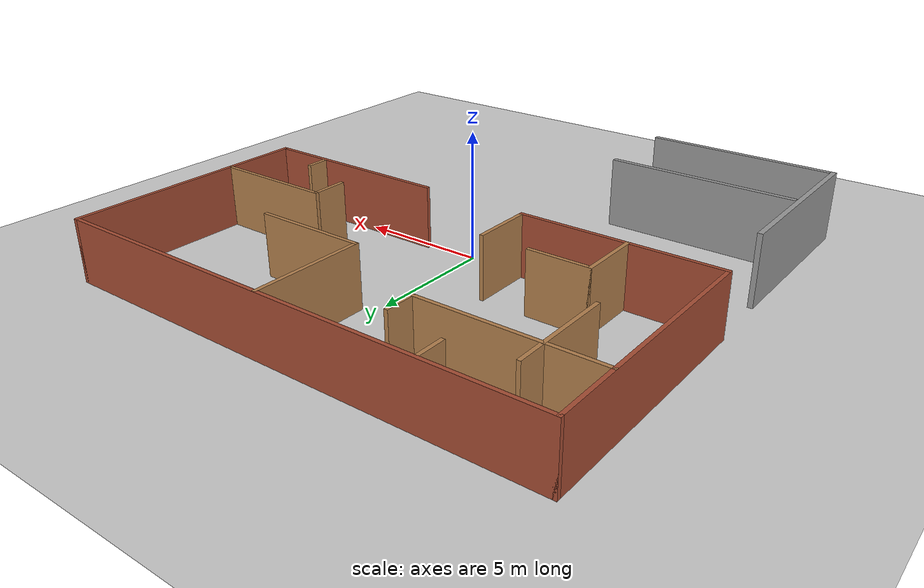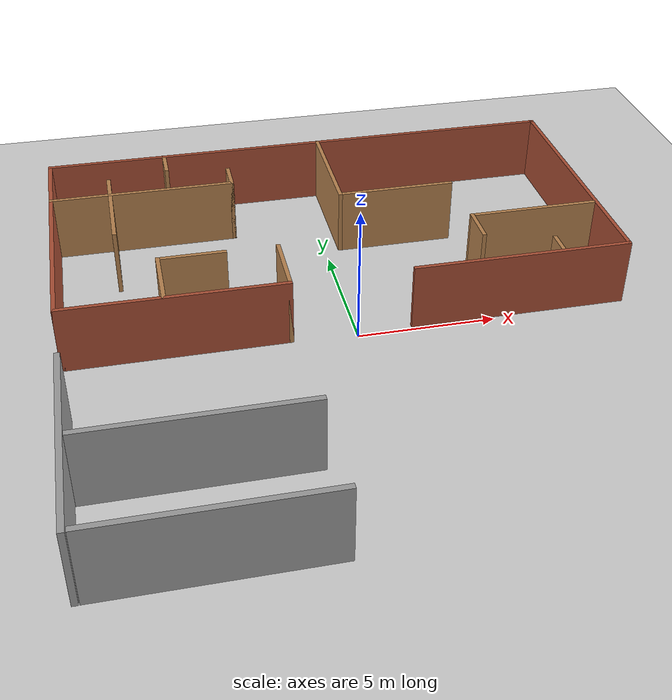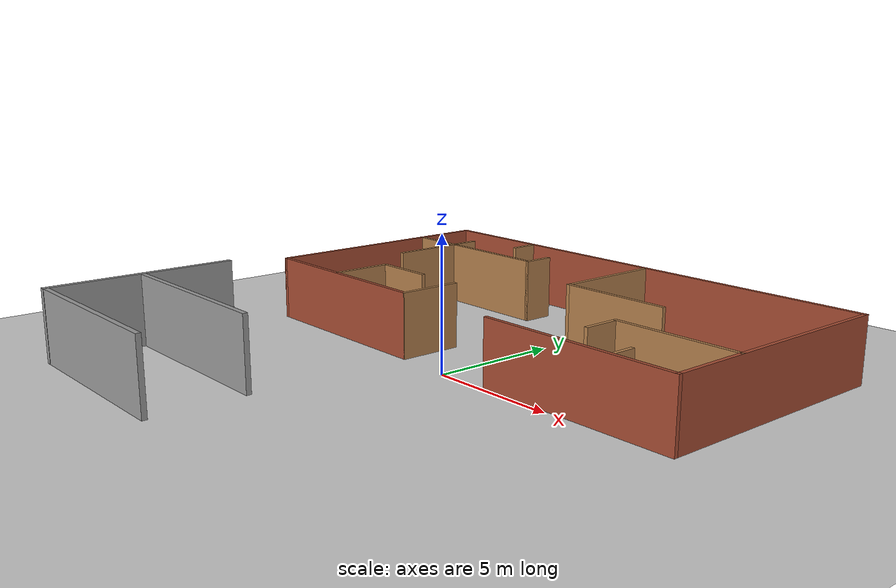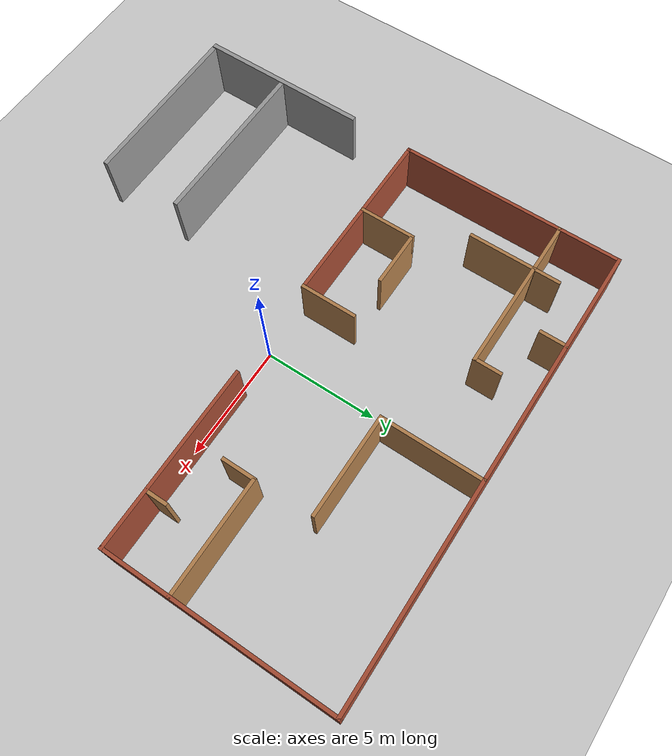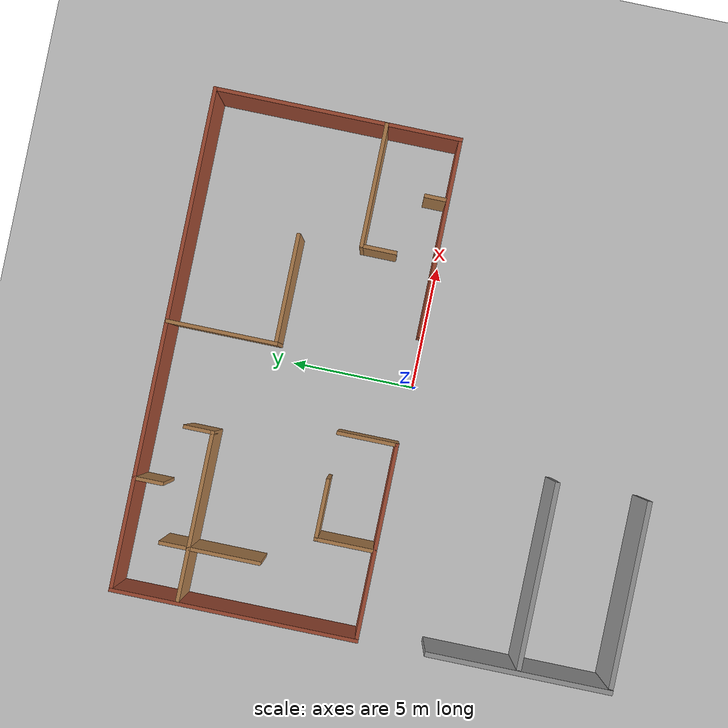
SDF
<sdf version="1.6">
 <world name="default">
  <light name="sun" type="directional">
   <pose>0 0 10 0 -0 0</pose>
   <diffuse>0.8 0.8 0.8 1</diffuse>
   <specular>0.2 0.2 0.2 1</specular>
   <attenuation>
    <range>1000</range>
    <constant>0.9</constant>
    <linear>0.01</linear>
    <quadratic>0.001</quadratic>
   </attenuation>
   <direction>-0.5 0.1 -0.9</direction>
  </light>
  <model name="ground_plane">
   <static>1</static>
   <link name="link">
    <collision name="collision">
     <geometry><plane><normal>0 0 1</normal><size>100 100</size></plane></geometry>
     <surface>
      <contact><collide_bitmask>65535</collide_bitmask></contact>
      <friction><ode><mu>100</mu><mu2>50</mu2></ode></friction>
     </surface>
    </collision>
    <visual name="visual">
     <cast_shadows>0</cast_shadows>
     <geometry><plane><normal>0 0 1</normal><size>100 100</size></plane></geometry>
     <material>
      <script><uri>file://media/materials/scripts/gazebo.material</uri><name>Gazebo/Grey</name></script>
     </material>
    </visual>
   </link>
  </model>
  <gravity>0 0 -9.8</gravity>
  <magnetic_field>6e-06 2.3e-05 -4.2e-05</magnetic_field>
  <atmosphere type="adiabatic"/>
  <physics name="default_physics" default="0" type="ode">
   <max_step_size>0.001</max_step_size>
   <real_time_factor>1</real_time_factor>
   <real_time_update_rate>1000</real_time_update_rate>
  </physics>
  <scene><ambient>0.4 0.4 0.4 1</ambient><background>0.7 0.7 0.7 1</background><shadows>1</shadows></scene>
  <audio><device>default</device></audio>
  <spherical_coordinates>
   <surface_model>EARTH_WGS84</surface_model>
   <latitude_deg>0</latitude_deg>
   <longitude_deg>0</longitude_deg>
   <elevation>0</elevation>
   <heading_deg>0</heading_deg>
  </spherical_coordinates>
  <model name="world_001">
   <pose>-0.148 5.11814 0 0 -0 0</pose>
   <link name="Wall_10">
    <collision name="Wall_10_Collision">
     <geometry><box><size>10 0.15 2.5</size></box></geometry>
     <pose>0 0 1.25 0 -0 0</pose>
    </collision>
    <visual name="Wall_10_Visual">
     <pose>0 0 1.25 0 -0 0</pose>
     <geometry><box><size>10 0.15 2.5</size></box></geometry>
     <material>
      <script><uri>file://media/materials/scripts/gazebo.material</uri><name>Gazebo/Bricks</name></script>
      <ambient>1 1 1 1</ambient>
     </material>
     <meta><layer>0</layer></meta>
    </visual>
    <pose>-10.05 0 0 0 -0 -1.5708</pose>
   </link>
   <link name="Wall_11">
    <collision name="Wall_11_Collision">
     <geometry><box><size>8 0.15 2.5</size></box></geometry>
     <pose>0 0 1.25 0 -0 0</pose>
    </collision>
    <visual name="Wall_11_Visual">
     <pose>0 0 1.25 0 -0 0</pose>
     <geometry><box><size>8 0.15 2.5</size></box></geometry>
     <material>
      <script><uri>file://media/materials/scripts/gazebo.material</uri><name>Gazebo/Bricks</name></script>
      <ambient>1 1 1 1</ambient>
     </material>
     <meta><layer>0</layer></meta>
    </visual>
    <pose>-6.125 -4.925 0 0 -0 0</pose>
   </link>
   <link name="Wall_13">
    <collision name="Wall_13_Collision">
     <geometry><box><size>7 0.15 2.5</size></box></geometry>
     <pose>0 0 1.25 0 -0 0</pose>
    </collision>
    <visual name="Wall_13_Visual">
     <pose>0 0 1.25 0 -0 0</pose>
     <geometry><box><size>7 0.15 2.5</size></box></geometry>
     <material>
      <script><uri>file://media/materials/scripts/gazebo.material</uri><name>Gazebo/Wood</name></script>
      <ambient>1 1 1 1</ambient>
     </material>
     <meta><layer>0</layer></meta>
    </visual>
    <pose>-6.61327 2.27077 0 0 -0 0</pose>
   </link>
   <link name="Wall_14">
    <collision name="Wall_14_Collision">
     <geometry><box><size>1.25 0.15 2.5</size></box></geometry>
     <pose>0 0 1.25 0 -0 0</pose>
    </collision>
    <visual name="Wall_14_Visual">
     <pose>0 0 1.25 0 -0 0</pose>
     <geometry><box><size>1.25 0.15 2.5</size></box></geometry>
     <material>
      <script><uri>file://media/materials/scripts/gazebo.material</uri><name>Gazebo/Wood</name></script>
      <ambient>1 1 1 1</ambient>
     </material>
     <meta><layer>0</layer></meta>
    </visual>
    <pose>-3.18827 2.82077 0 0 -0 1.5708</pose>
   </link>
   <link name="Wall_16">
    <collision name="Wall_16_Collision">
     <geometry><box><size>1.25 0.15 2.5</size></box></geometry>
     <pose>0 0 1.25 0 -0 0</pose>
    </collision>
    <visual name="Wall_16_Visual">
     <pose>0 0 1.25 0 -0 0</pose>
     <geometry><box><size>1.25 0.15 2.5</size></box></geometry>
     <material>
      <script><uri>file://media/materials/scripts/gazebo.material</uri><name>Gazebo/Wood</name></script>
      <ambient>1 1 1 1</ambient>
     </material>
     <meta><layer>0</layer></meta>
    </visual>
    <pose>-5.55918 4.37296 0 0 -0 -1.5708</pose>
   </link>
   <link name="Wall_18">
    <collision name="Wall_18_Collision">
     <geometry><box><size>1.25 0.15 2.5</size></box></geometry>
     <pose>0 0 1.25 0 -0 0</pose>
    </collision>
    <visual name="Wall_18_Visual">
     <pose>0 0 1.25 0 -0 0</pose>
     <geometry><box><size>1.25 0.15 2.5</size></box></geometry>
     <material>
      <script><uri>file://media/materials/scripts/gazebo.material</uri><name>Gazebo/Wood</name></script>
      <ambient>1 1 1 1</ambient>
     </material>
     <meta><layer>0</layer></meta>
    </visual>
    <pose>-7.8458 2.83455 0 0 -0 1.5708</pose>
   </link>
   <link name="Wall_20">
    <collision name="Wall_20_Collision">
     <geometry><box><size>3 0.15 2.5</size></box></geometry>
     <pose>0 0 1.25 0 -0 0</pose>
    </collision>
    <visual name="Wall_20_Visual">
     <pose>0 0 1.25 0 -0 0</pose>
     <geometry><box><size>3 0.15 2.5</size></box></geometry>
     <material>
      <script><uri>file://media/materials/scripts/gazebo.material</uri><name>Gazebo/Wood</name></script>
      <ambient>1 1 1 1</ambient>
     </material>
     <meta><layer>0</layer></meta>
    </visual>
    <pose>-7.8458 0.859554 0 0 -0 -1.5708</pose>
   </link>
   <link name="Wall_22">
    <collision name="Wall_22_Collision">
     <geometry><box><size>2.5 0.15 2.5</size></box></geometry>
     <pose>0 0 1.25 0 -0 0</pose>
    </collision>
    <visual name="Wall_22_Visual">
     <pose>0 0 1.25 0 -0 0</pose>
     <geometry><box><size>2.5 0.15 2.5</size></box></geometry>
     <material>
      <script><uri>file://media/materials/scripts/gazebo.material</uri><name>Gazebo/Wood</name></script>
      <ambient>1 1 1 1</ambient>
     </material>
     <meta><layer>0</layer></meta>
    </visual>
    <pose>-6.46263 -3.7247 0 0 -0 1.5708</pose>
   </link>
   <link name="Wall_23">
    <collision name="Wall_23_Collision">
     <geometry><box><size>2.5 0.15 2.5</size></box></geometry>
     <pose>0 0 1.25 0 -0 0</pose>
    </collision>
    <visual name="Wall_23_Visual">
     <pose>0 0 1.25 0 -0 0</pose>
     <geometry><box><size>2.5 0.15 2.5</size></box></geometry>
     <material>
      <script><uri>file://media/materials/scripts/gazebo.material</uri><name>Gazebo/Wood</name></script>
      <ambient>1 1 1 1</ambient>
     </material>
     <meta><layer>0</layer></meta>
    </visual>
    <pose>-5.28763 -2.5497 0 0 -0 0</pose>
   </link>
   <link name="Wall_25">
    <collision name="Wall_25_Collision">
     <geometry><box><size>2.5 0.15 2.5</size></box></geometry>
     <pose>0 0 1.25 0 -0 0</pose>
    </collision>
    <visual name="Wall_25_Visual">
     <pose>0 0 1.25 0 -0 0</pose>
     <geometry><box><size>2.5 0.15 2.5</size></box></geometry>
     <material>
      <script><uri>file://media/materials/scripts/gazebo.material</uri><name>Gazebo/Wood</name></script>
      <ambient>1 1 1 1</ambient>
     </material>
     <meta><layer>0</layer></meta>
    </visual>
    <pose>-2.2 -3.75 0 0 -0 1.5708</pose>
   </link>
   <link name="Wall_27">
    <collision name="Wall_27_Collision">
     <geometry><box><size>4.5 0.15 2.5</size></box></geometry>
     <pose>0 0 1.25 0 -0 0</pose>
    </collision>
    <visual name="Wall_27_Visual">
     <pose>0 0 1.25 0 -0 0</pose>
     <geometry><box><size>4.5 0.15 2.5</size></box></geometry>
     <material>
      <script><uri>file://media/materials/scripts/gazebo.material</uri><name>Gazebo/Wood</name></script>
      <ambient>1 1 1 1</ambient>
     </material>
     <meta><layer>0</layer></meta>
    </visual>
    <pose>0.734245 2.72707 0 0 -0 -1.5708</pose>
   </link>
   <link name="Wall_28">
    <collision name="Wall_28_Collision">
     <geometry><box><size>4.5 0.15 2.5</size></box></geometry>
     <pose>0 0 1.25 0 -0 0</pose>
    </collision>
    <visual name="Wall_28_Visual">
     <pose>0 0 1.25 0 -0 0</pose>
     <geometry><box><size>4.5 0.15 2.5</size></box></geometry>
     <material>
      <script><uri>file://media/materials/scripts/gazebo.material</uri><name>Gazebo/Wood</name></script>
      <ambient>1 1 1 1</ambient>
     </material>
     <meta><layer>0</layer></meta>
    </visual>
    <pose>2.90924 0.552074 0 0 -0 0</pose>
   </link>
   <link name="Wall_30">
    <collision name="Wall_30_Collision">
     <geometry><box><size>5 0.15 2.5</size></box></geometry>
     <pose>0 0 1.25 0 -0 0</pose>
    </collision>
    <visual name="Wall_30_Visual">
     <pose>0 0 1.25 0 -0 0</pose>
     <geometry><box><size>5 0.15 2.5</size></box></geometry>
     <material>
      <script><uri>file://media/materials/scripts/gazebo.material</uri><name>Gazebo/Wood</name></script>
      <ambient>1 1 1 1</ambient>
     </material>
     <meta><layer>0</layer></meta>
    </visual>
    <pose>7.60571 -1.95646 0 0 -0 3.14159</pose>
   </link>
   <link name="Wall_32">
    <collision name="Wall_32_Collision">
     <geometry><box><size>1.5 0.15 2.5</size></box></geometry>
     <pose>0 0 1.25 0 -0 0</pose>
    </collision>
    <visual name="Wall_32_Visual">
     <pose>0 0 1.25 0 -0 0</pose>
     <geometry><box><size>1.5 0.15 2.5</size></box></geometry>
     <material>
      <script><uri>file://media/materials/scripts/gazebo.material</uri><name>Gazebo/Wood</name></script>
      <ambient>1 1 1 1</ambient>
     </material>
     <meta><layer>0</layer></meta>
    </visual>
    <pose>5.18071 -2.63146 0 0 -0 -1.5708</pose>
   </link>
   <link name="Wall_34">
    <collision name="Wall_34_Collision">
     <geometry><box><size>1 0.15 2.5</size></box></geometry>
     <pose>0 0 1.25 0 -0 0</pose>
    </collision>
    <visual name="Wall_34_Visual">
     <pose>0 0 1.25 0 -0 0</pose>
     <geometry><box><size>1 0.15 2.5</size></box></geometry>
     <material>
      <script><uri>file://media/materials/scripts/gazebo.material</uri><name>Gazebo/Wood</name></script>
      <ambient>1 1 1 1</ambient>
     </material>
     <meta><layer>0</layer></meta>
    </visual>
    <pose>7.61409 -4.46812 0 0 -0 1.5708</pose>
   </link>
   <link name="Wall_6">
    <collision name="Wall_6_Collision">
     <geometry><box><size>20.25 0.15 2.5</size></box></geometry>
     <pose>0 0 1.25 0 -0 0</pose>
    </collision>
    <visual name="Wall_6_Visual">
     <pose>0 0 1.25 0 -0 0</pose>
     <geometry><box><size>20.25 0.15 2.5</size></box></geometry>
     <material>
      <script><uri>file://media/materials/scripts/gazebo.material</uri><name>Gazebo/Bricks</name></script>
      <ambient>1 1 1 1</ambient>
     </material>
     <meta><layer>0</layer></meta>
    </visual>
    <pose>-0 4.925 0 0 -0 0</pose>
   </link>
   <link name="Wall_7">
    <collision name="Wall_7_Collision">
     <geometry><box><size>10 0.15 2.5</size></box></geometry>
     <pose>0 0 1.25 0 -0 0</pose>
    </collision>
    <visual name="Wall_7_Visual">
     <pose>0 0 1.25 0 -0 0</pose>
     <geometry><box><size>10 0.15 2.5</size></box></geometry>
     <material>
      <script><uri>file://media/materials/scripts/gazebo.material</uri><name>Gazebo/Bricks</name></script>
      <ambient>1 1 1 1</ambient>
     </material>
     <meta><layer>0</layer></meta>
    </visual>
    <pose>10.05 0 0 0 -0 -1.5708</pose>
   </link>
   <link name="Wall_8">
    <collision name="Wall_8_Collision">
     <geometry><box><size>8 0.15 2.5</size></box></geometry>
     <pose>0 0 1.25 0 -0 0</pose>
    </collision>
    <visual name="Wall_8_Visual">
     <pose>0 0 1.25 0 -0 0</pose>
     <geometry><box><size>8 0.15 2.5</size></box></geometry>
     <material>
      <script><uri>file://media/materials/scripts/gazebo.material</uri><name>Gazebo/Bricks</name></script>
      <ambient>1 1 1 1</ambient>
     </material>
     <meta><layer>0</layer></meta>
    </visual>
    <pose>6.125 -4.925 0 0 -0 3.14159</pose>
   </link>
   <static>1</static>
  </model>
  <model name="grey_wall">
   <static>1</static>
   <link name="link">
    <pose>0 0 1.4 0 -0 0</pose>
    <collision name="collision"><geometry><box><size>7.5 0.2 2.8</size></box></geometry></collision>
    <visual name="visual">
     <cast_shadows>0</cast_shadows>
     <geometry><box><size>7.5 0.2 2.8</size></box></geometry>
     <material>
      <script>
       <uri>model://grey_wall/materials/scripts</uri>
       <uri>model://grey_wall/materials/textures</uri>
       <name>vrc/grey_wall</name>
      </script>
     </material>
    </visual>
   </link>
   <pose>-6.20706 -9.90392 0 0 -0 0</pose>
  </model>
  <model name="grey_wall_0">
   <static>1</static>
   <link name="link">
    <pose>0 0 1.4 0 -0 0</pose>
    <collision name="collision"><geometry><box><size>7.5 0.2 2.8</size></box></geometry></collision>
    <visual name="visual">
     <cast_shadows>0</cast_shadows>
     <geometry><box><size>7.5 0.2 2.8</size></box></geometry>
     <material>
      <script>
       <uri>model://grey_wall/materials/scripts</uri>
       <uri>model://grey_wall/materials/textures</uri>
       <name>vrc/grey_wall</name>
      </script>
     </material>
    </visual>
   </link>
   <pose>-10.081 -6.25968 0 0 0 -1.57167</pose>
  </model>
  <model name="grey_wall_1">
   <static>1</static>
   <link name="link">
    <pose>0 0 1.4 0 -0 0</pose>
    <collision name="collision"><geometry><box><size>7.5 0.2 2.8</size></box></geometry></collision>
    <visual name="visual">
     <cast_shadows>0</cast_shadows>
     <geometry><box><size>7.5 0.2 2.8</size></box></geometry>
     <material>
      <script>
       <uri>model://grey_wall/materials/scripts</uri>
       <uri>model://grey_wall/materials/textures</uri>
       <name>vrc/grey_wall</name>
      </script>
     </material>
    </visual>
   </link>
   <pose>-6.21477 -6.23249 0 0 -0 0</pose>
  </model>
 </world>
</sdf>
